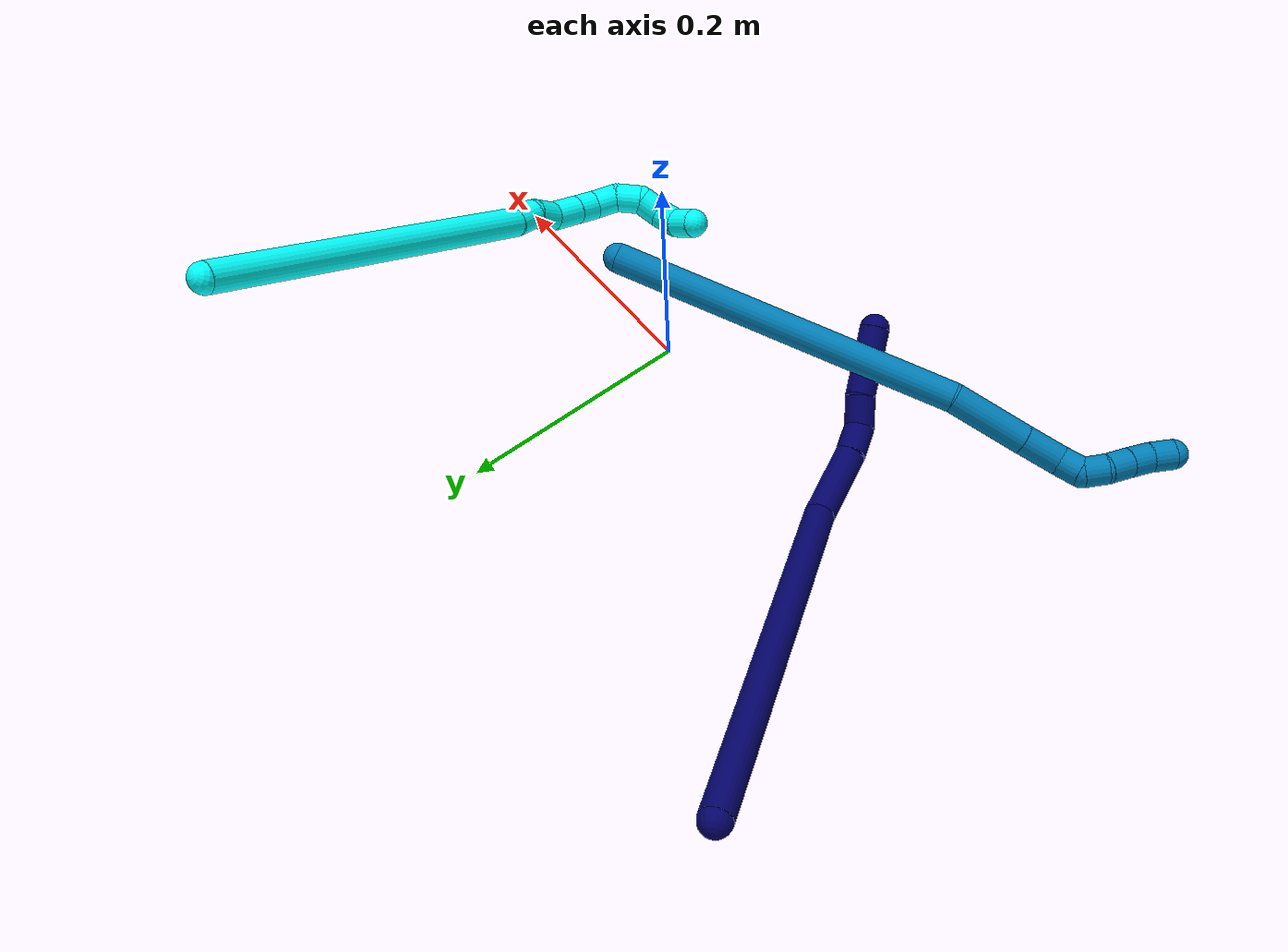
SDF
<sdf version="1.7">
 <world name="default">
  <model name="bin">
   <static>1</static>
   <link name="bottom">
    <collision name="collision-bottom">
     <pose>0 0 -0.01 0 -0 0</pose>
     <geometry><box><size>0.8 0.6 0.02</size></box></geometry>
     <surface>
      <friction><ode><mu>100</mu><mu2>100</mu2></ode></friction>
      <contact><collide_bitmask>65535</collide_bitmask></contact>
     </surface>
    </collision>
   </link>
   <link name="west_wall">
    <collision name="collision-west_wall">
     <pose>-0.41 0 0.1 0 -0 0</pose>
     <geometry><box><size>0.02 0.6 0.2</size></box></geometry>
     <surface>
      <friction><ode><mu>100</mu><mu2>100</mu2></ode></friction>
      <contact><collide_bitmask>65535</collide_bitmask></contact>
     </surface>
    </collision>
   </link>
   <link name="east_wall">
    <collision name="collision-east_wall">
     <pose>0.41 0 0.1 0 -0 0</pose>
     <geometry><box><size>0.02 0.6 0.2</size></box></geometry>
     <surface>
      <friction><ode><mu>100</mu><mu2>100</mu2></ode></friction>
      <contact><collide_bitmask>65535</collide_bitmask></contact>
     </surface>
    </collision>
   </link>
   <link name="south_wall">
    <collision name="collision-south_wall">
     <pose>0 -0.31 0.1 0 -0 0</pose>
     <geometry><box><size>0.8 0.02 0.2</size></box></geometry>
     <surface>
      <friction><ode><mu>100</mu><mu2>100</mu2></ode></friction>
      <contact><collide_bitmask>65535</collide_bitmask></contact>
     </surface>
    </collision>
   </link>
   <link name="north_wall">
    <collision name="collision-north_wall">
     <pose>0 0.31 0.1 0 -0 0</pose>
     <geometry><box><size>0.8 0.02 0.2</size></box></geometry>
     <surface>
      <friction><ode><mu>100</mu><mu2>100</mu2></ode></friction>
      <contact><collide_bitmask>65535</collide_bitmask></contact>
     </surface>
    </collision>
   </link>
  </model>
  <model name="3">
   <static>0</static>
   <link name="3">
    <collision name="collision-cylinder-e_1_1_4">
     <pose>0.031342 -0.039373 -0.140825 2.86897 0.211148 1.31557</pose>
     <geometry><cylinder><radius>0.0125</radius><length>0.299094</length></cylinder></geometry>
     <surface>
      <friction><ode><mu>1.16</mu><mu2>1.16</mu2><slip1>0</slip1><slip2>0</slip2></ode></friction>
      <contact><ode><kp>1e+06</kp><kd>1</kd><max_vel>0</max_vel><min_depth>0.001</min_depth></ode></contact>
     </surface>
    </collision>
    <visual name="visual-cylinder-e_1_1_4">
     <pose>0.031342 -0.039373 -0.140825 2.86897 0.211148 1.31557</pose>
     <geometry><cylinder><radius>0.0125</radius><length>0.299094</length></cylinder></geometry>
     <material><ambient>0.003922 1 0.996078 1</ambient></material>
    </visual>
    <collision name="collision-cylinder-e_2_4_5">
     <pose>0.066972 -0.082646 -0.29184 2.77611 0.374441 1.59556</pose>
     <geometry><cylinder><radius>0.0125</radius><length>0.023444</length></cylinder></geometry>
     <surface>
      <friction><ode><mu>1.16</mu><mu2>1.16</mu2><slip1>0</slip1><slip2>0</slip2></ode></friction>
      <contact><ode><kp>1e+06</kp><kd>1</kd><max_vel>0</max_vel><min_depth>0.001</min_depth></ode></contact>
     </surface>
    </collision>
    <visual name="visual-cylinder-e_2_4_5">
     <pose>0.066972 -0.082646 -0.29184 2.77611 0.374441 1.59556</pose>
     <geometry><cylinder><radius>0.0125</radius><length>0.023444</length></cylinder></geometry>
     <material><ambient>0.003922 1 0.996078 1</ambient></material>
    </visual>
    <collision name="collision-cylinder-e_3_5_6">
     <pose>0.072907 -0.086809 -0.314679 3.12072 0.129448 2.82234</pose>
     <geometry><cylinder><radius>0.0125</radius><length>0.025519</length></cylinder></geometry>
     <surface>
      <friction><ode><mu>1.16</mu><mu2>1.16</mu2><slip1>0</slip1><slip2>0</slip2></ode></friction>
      <contact><ode><kp>1e+06</kp><kd>1</kd><max_vel>0</max_vel><min_depth>0.001</min_depth></ode></contact>
     </surface>
    </collision>
    <visual name="visual-cylinder-e_3_5_6">
     <pose>0.072907 -0.086809 -0.314679 3.12072 0.129448 2.82234</pose>
     <geometry><cylinder><radius>0.0125</radius><length>0.025519</length></cylinder></geometry>
     <material><ambient>0.003922 1 0.996078 1</ambient></material>
    </visual>
    <collision name="collision-cylinder-e_4_6_7">
     <pose>0.076964 -0.092614 -0.339115 2.70213 0.182992 0.779597</pose>
     <geometry><cylinder><radius>0.0125</radius><length>0.026489</length></cylinder></geometry>
     <surface>
      <friction><ode><mu>1.16</mu><mu2>1.16</mu2><slip1>0</slip1><slip2>0</slip2></ode></friction>
      <contact><ode><kp>1e+06</kp><kd>1</kd><max_vel>0</max_vel><min_depth>0.001</min_depth></ode></contact>
     </surface>
    </collision>
    <visual name="visual-cylinder-e_4_6_7">
     <pose>0.076964 -0.092614 -0.339115 2.70213 0.182992 0.779597</pose>
     <geometry><cylinder><radius>0.0125</radius><length>0.026489</length></cylinder></geometry>
     <material><ambient>0.003922 1 0.996078 1</ambient></material>
    </visual>
    <collision name="collision-cylinder-e_5_7_8">
     <pose>0.08133 -0.102539 -0.360239 2.7026 0.187367 0.79724</pose>
     <geometry><cylinder><radius>0.0125</radius><length>0.021</length></cylinder></geometry>
     <surface>
      <friction><ode><mu>1.16</mu><mu2>1.16</mu2><slip1>0</slip1><slip2>0</slip2></ode></friction>
      <contact><ode><kp>1e+06</kp><kd>1</kd><max_vel>0</max_vel><min_depth>0.001</min_depth></ode></contact>
     </surface>
    </collision>
    <visual name="visual-cylinder-e_5_7_8">
     <pose>0.08133 -0.102539 -0.360239 2.7026 0.187367 0.79724</pose>
     <geometry><cylinder><radius>0.0125</radius><length>0.021</length></cylinder></geometry>
     <material><ambient>0.003922 1 0.996078 1</ambient></material>
    </visual>
    <collision name="collision-cylinder-e_6_8_9">
     <pose>0.082173 -0.115529 -0.375821 2.19853 -0.104334 -0.204092</pose>
     <geometry><cylinder><radius>0.0125</radius><length>0.021379</length></cylinder></geometry>
     <surface>
      <friction><ode><mu>1.16</mu><mu2>1.16</mu2><slip1>0</slip1><slip2>0</slip2></ode></friction>
      <contact><ode><kp>1e+06</kp><kd>1</kd><max_vel>0</max_vel><min_depth>0.001</min_depth></ode></contact>
     </surface>
    </collision>
    <visual name="visual-cylinder-e_6_8_9">
     <pose>0.082173 -0.115529 -0.375821 2.19853 -0.104334 -0.204092</pose>
     <geometry><cylinder><radius>0.0125</radius><length>0.021379</length></cylinder></geometry>
     <material><ambient>0.003922 1 0.996078 1</ambient></material>
    </visual>
    <collision name="collision-cylinder-e_7_9_10">
     <pose>0.075359 -0.131398 -0.388075 2.26194 -0.543823 -1.06979</pose>
     <geometry><cylinder><radius>0.0125</radius><length>0.022036</length></cylinder></geometry>
     <surface>
      <friction><ode><mu>1.16</mu><mu2>1.16</mu2><slip1>0</slip1><slip2>0</slip2></ode></friction>
      <contact><ode><kp>1e+06</kp><kd>1</kd><max_vel>0</max_vel><min_depth>0.001</min_depth></ode></contact>
     </surface>
    </collision>
    <visual name="visual-cylinder-e_7_9_10">
     <pose>0.075359 -0.131398 -0.388075 2.26194 -0.543823 -1.06979</pose>
     <geometry><cylinder><radius>0.0125</radius><length>0.022036</length></cylinder></geometry>
     <material><ambient>0.003922 1 0.996078 1</ambient></material>
    </visual>
    <collision name="collision-cylinder-e_8_10_11">
     <pose>0.061802 -0.140509 -0.400567 2.86419 -0.861648 -2.55186</pose>
     <geometry><cylinder><radius>0.0125</radius><length>0.020703</length></cylinder></geometry>
     <surface>
      <friction><ode><mu>1.16</mu><mu2>1.16</mu2><slip1>0</slip1><slip2>0</slip2></ode></friction>
      <contact><ode><kp>1e+06</kp><kd>1</kd><max_vel>0</max_vel><min_depth>0.001</min_depth></ode></contact>
     </surface>
    </collision>
    <visual name="visual-cylinder-e_8_10_11">
     <pose>0.061802 -0.140509 -0.400567 2.86419 -0.861648 -2.55186</pose>
     <geometry><cylinder><radius>0.0125</radius><length>0.020703</length></cylinder></geometry>
     <material><ambient>0.003922 1 0.996078 1</ambient></material>
    </visual>
    <collision name="collision-cylinder-e_9_11_12">
     <pose>0.044919 -0.146901 -0.4077 1.71258 -1.10023 -1.23084</pose>
     <geometry><cylinder><radius>0.0125</radius><length>0.020256</length></cylinder></geometry>
     <surface>
      <friction><ode><mu>1.16</mu><mu2>1.16</mu2><slip1>0</slip1><slip2>0</slip2></ode></friction>
      <contact><ode><kp>1e+06</kp><kd>1</kd><max_vel>0</max_vel><min_depth>0.001</min_depth></ode></contact>
     </surface>
    </collision>
    <visual name="visual-cylinder-e_9_11_12">
     <pose>0.044919 -0.146901 -0.4077 1.71258 -1.10023 -1.23084</pose>
     <geometry><cylinder><radius>0.0125</radius><length>0.020256</length></cylinder></geometry>
     <material><ambient>0.003922 1 0.996078 1</ambient></material>
    </visual>
    <collision name="collision-cylinder-e_10_12_2">
     <pose>0.029352 -0.159052 -0.40792 1.5145 -0.709384 -0.673476</pose>
     <geometry><cylinder><radius>0.0125</radius><length>0.020079</length></cylinder></geometry>
     <surface>
      <friction><ode><mu>1.16</mu><mu2>1.16</mu2><slip1>0</slip1><slip2>0</slip2></ode></friction>
      <contact><ode><kp>1e+06</kp><kd>1</kd><max_vel>0</max_vel><min_depth>0.001</min_depth></ode></contact>
     </surface>
    </collision>
    <visual name="visual-cylinder-e_10_12_2">
     <pose>0.029352 -0.159052 -0.40792 1.5145 -0.709384 -0.673476</pose>
     <geometry><cylinder><radius>0.0125</radius><length>0.020079</length></cylinder></geometry>
     <material><ambient>0.003922 1 0.996078 1</ambient></material>
    </visual>
    <collision name="collision-sphere-2">
     <pose>0.022812 -0.166658 -0.407491 0 -0 0</pose>
     <geometry><sphere><radius>0.0125</radius></sphere></geometry>
     <surface>
      <friction><ode><mu>1.16</mu><mu2>1.16</mu2><slip1>0</slip1><slip2>0</slip2></ode></friction>
      <contact><ode><kp>1e+06</kp><kd>1</kd><max_vel>0</max_vel><min_depth>0.001</min_depth></ode></contact>
     </surface>
    </collision>
    <visual name="visual-sphere-2">
     <pose>0.022812 -0.166658 -0.407491 0 -0 0</pose>
     <geometry><sphere><radius>0.0125</radius></sphere></geometry>
     <material><ambient>0.003922 1 0.996078 1</ambient></material>
    </visual>
    <collision name="collision-sphere-12">
     <pose>0.035891 -0.151447 -0.408348 0 -0 0</pose>
     <geometry><sphere><radius>0.0125</radius></sphere></geometry>
     <surface>
      <friction><ode><mu>1.16</mu><mu2>1.16</mu2><slip1>0</slip1><slip2>0</slip2></ode></friction>
      <contact><ode><kp>1e+06</kp><kd>1</kd><max_vel>0</max_vel><min_depth>0.001</min_depth></ode></contact>
     </surface>
    </collision>
    <visual name="visual-sphere-12">
     <pose>0.035891 -0.151447 -0.408348 0 -0 0</pose>
     <geometry><sphere><radius>0.0125</radius></sphere></geometry>
     <material><ambient>0.003922 1 0.996078 1</ambient></material>
    </visual>
    <collision name="collision-sphere-11">
     <pose>0.053946 -0.142355 -0.407051 0 -0 0</pose>
     <geometry><sphere><radius>0.0125</radius></sphere></geometry>
     <surface>
      <friction><ode><mu>1.16</mu><mu2>1.16</mu2><slip1>0</slip1><slip2>0</slip2></ode></friction>
      <contact><ode><kp>1e+06</kp><kd>1</kd><max_vel>0</max_vel><min_depth>0.001</min_depth></ode></contact>
     </surface>
    </collision>
    <visual name="visual-sphere-11">
     <pose>0.053946 -0.142355 -0.407051 0 -0 0</pose>
     <geometry><sphere><radius>0.0125</radius></sphere></geometry>
     <material><ambient>0.003922 1 0.996078 1</ambient></material>
    </visual>
    <collision name="collision-sphere-10">
     <pose>0.069658 -0.138663 -0.394084 0 -0 0</pose>
     <geometry><sphere><radius>0.0125</radius></sphere></geometry>
     <surface>
      <friction><ode><mu>1.16</mu><mu2>1.16</mu2><slip1>0</slip1><slip2>0</slip2></ode></friction>
      <contact><ode><kp>1e+06</kp><kd>1</kd><max_vel>0</max_vel><min_depth>0.001</min_depth></ode></contact>
     </surface>
    </collision>
    <visual name="visual-sphere-10">
     <pose>0.069658 -0.138663 -0.394084 0 -0 0</pose>
     <geometry><sphere><radius>0.0125</radius></sphere></geometry>
     <material><ambient>0.003922 1 0.996078 1</ambient></material>
    </visual>
    <collision name="collision-sphere-9">
     <pose>0.081059 -0.124133 -0.382065 0 -0 0</pose>
     <geometry><sphere><radius>0.0125</radius></sphere></geometry>
     <surface>
      <friction><ode><mu>1.16</mu><mu2>1.16</mu2><slip1>0</slip1><slip2>0</slip2></ode></friction>
      <contact><ode><kp>1e+06</kp><kd>1</kd><max_vel>0</max_vel><min_depth>0.001</min_depth></ode></contact>
     </surface>
    </collision>
    <visual name="visual-sphere-9">
     <pose>0.081059 -0.124133 -0.382065 0 -0 0</pose>
     <geometry><sphere><radius>0.0125</radius></sphere></geometry>
     <material><ambient>0.003922 1 0.996078 1</ambient></material>
    </visual>
    <collision name="collision-sphere-4">
     <pose>0.062685 -0.078746 -0.28165 0 -0 0</pose>
     <geometry><sphere><radius>0.0125</radius></sphere></geometry>
     <surface>
      <friction><ode><mu>1.16</mu><mu2>1.16</mu2><slip1>0</slip1><slip2>0</slip2></ode></friction>
      <contact><ode><kp>1e+06</kp><kd>1</kd><max_vel>0</max_vel><min_depth>0.001</min_depth></ode></contact>
     </surface>
    </collision>
    <visual name="visual-sphere-4">
     <pose>0.062685 -0.078746 -0.28165 0 -0 0</pose>
     <geometry><sphere><radius>0.0125</radius></sphere></geometry>
     <material><ambient>0.003922 1 0.996078 1</ambient></material>
    </visual>
    <collision name="collision-sphere-1">
     <geometry><sphere><radius>0.0125</radius></sphere></geometry>
     <surface>
      <friction><ode><mu>1.16</mu><mu2>1.16</mu2><slip1>0</slip1><slip2>0</slip2></ode></friction>
      <contact><ode><kp>1e+06</kp><kd>1</kd><max_vel>0</max_vel><min_depth>0.001</min_depth></ode></contact>
     </surface>
    </collision>
    <visual name="visual-sphere-1">
     <geometry><sphere><radius>0.0125</radius></sphere></geometry>
     <material><ambient>0.003922 1 0.996078 1</ambient></material>
    </visual>
    <collision name="collision-sphere-8">
     <pose>0.083286 -0.106924 -0.369577 0 -0 0</pose>
     <geometry><sphere><radius>0.0125</radius></sphere></geometry>
     <surface>
      <friction><ode><mu>1.16</mu><mu2>1.16</mu2><slip1>0</slip1><slip2>0</slip2></ode></friction>
      <contact><ode><kp>1e+06</kp><kd>1</kd><max_vel>0</max_vel><min_depth>0.001</min_depth></ode></contact>
     </surface>
    </collision>
    <visual name="visual-sphere-8">
     <pose>0.083286 -0.106924 -0.369577 0 -0 0</pose>
     <geometry><sphere><radius>0.0125</radius></sphere></geometry>
     <material><ambient>0.003922 1 0.996078 1</ambient></material>
    </visual>
    <collision name="collision-sphere-5">
     <pose>0.07126 -0.086545 -0.302029 0 -0 0</pose>
     <geometry><sphere><radius>0.0125</radius></sphere></geometry>
     <surface>
      <friction><ode><mu>1.16</mu><mu2>1.16</mu2><slip1>0</slip1><slip2>0</slip2></ode></friction>
      <contact><ode><kp>1e+06</kp><kd>1</kd><max_vel>0</max_vel><min_depth>0.001</min_depth></ode></contact>
     </surface>
    </collision>
    <visual name="visual-sphere-5">
     <pose>0.07126 -0.086545 -0.302029 0 -0 0</pose>
     <geometry><sphere><radius>0.0125</radius></sphere></geometry>
     <material><ambient>0.003922 1 0.996078 1</ambient></material>
    </visual>
    <collision name="collision-sphere-6">
     <pose>0.074554 -0.087073 -0.327329 0 -0 0</pose>
     <geometry><sphere><radius>0.0125</radius></sphere></geometry>
     <surface>
      <friction><ode><mu>1.16</mu><mu2>1.16</mu2><slip1>0</slip1><slip2>0</slip2></ode></friction>
      <contact><ode><kp>1e+06</kp><kd>1</kd><max_vel>0</max_vel><min_depth>0.001</min_depth></ode></contact>
     </surface>
    </collision>
    <visual name="visual-sphere-6">
     <pose>0.074554 -0.087073 -0.327329 0 -0 0</pose>
     <geometry><sphere><radius>0.0125</radius></sphere></geometry>
     <material><ambient>0.003922 1 0.996078 1</ambient></material>
    </visual>
    <collision name="collision-sphere-7">
     <pose>0.079374 -0.098155 -0.350901 0 -0 0</pose>
     <geometry><sphere><radius>0.0125</radius></sphere></geometry>
     <surface>
      <friction><ode><mu>1.16</mu><mu2>1.16</mu2><slip1>0</slip1><slip2>0</slip2></ode></friction>
      <contact><ode><kp>1e+06</kp><kd>1</kd><max_vel>0</max_vel><min_depth>0.001</min_depth></ode></contact>
     </surface>
    </collision>
    <visual name="visual-sphere-7">
     <pose>0.079374 -0.098155 -0.350901 0 -0 0</pose>
     <geometry><sphere><radius>0.0125</radius></sphere></geometry>
     <material><ambient>0.003922 1 0.996078 1</ambient></material>
    </visual>
    <inertial>
     <pose>0.045495 -0.069959 -0.229737 0 -0 0</pose>
     <mass>0.5</mass>
     <inertia>
      <ixx>0.002681</ixx>
      <ixy>0</ixy>
      <ixz>0</ixz>
      <iyy>0.001689</iyy>
      <iyz>0</iyz>
      <izz>9.8e-05</izz>
     </inertia>
    </inertial>
   </link>
   <pose>0.122307 0.313865 0.220635 -0.751245 -0.130834 -0.238798</pose>
  </model>
  <model name="7">
   <static>0</static>
   <link name="7">
    <collision name="collision-cylinder-e_1_1_4">
     <pose>-0.02844 0.000386 -0.160503 -3.13919 -0.175371 3.11425</pose>
     <geometry><cylinder><radius>0.0125</radius><length>0.326007</length></cylinder></geometry>
     <surface>
      <friction><ode><mu>1.16</mu><mu2>1.16</mu2><slip1>0</slip1><slip2>0</slip2></ode></friction>
      <contact><ode><kp>1e+06</kp><kd>1</kd><max_vel>0</max_vel><min_depth>0.001</min_depth></ode></contact>
     </surface>
    </collision>
    <visual name="visual-cylinder-e_1_1_4">
     <pose>-0.02844 0.000386 -0.160503 -3.13919 -0.175371 3.11425</pose>
     <geometry><cylinder><radius>0.0125</radius><length>0.326007</length></cylinder></geometry>
     <material><ambient>0.003922 0 0.403922 1</ambient></material>
    </visual>
    <collision name="collision-cylinder-e_2_4_5">
     <pose>-0.054409 -0.010188 -0.34971 2.77684 0.08025 0.428681</pose>
     <geometry><cylinder><radius>0.0125</radius><length>0.061648</length></cylinder></geometry>
     <surface>
      <friction><ode><mu>1.16</mu><mu2>1.16</mu2><slip1>0</slip1><slip2>0</slip2></ode></friction>
      <contact><ode><kp>1e+06</kp><kd>1</kd><max_vel>0</max_vel><min_depth>0.001</min_depth></ode></contact>
     </surface>
    </collision>
    <visual name="visual-cylinder-e_2_4_5">
     <pose>-0.054409 -0.010188 -0.34971 2.77684 0.08025 0.428681</pose>
     <geometry><cylinder><radius>0.0125</radius><length>0.061648</length></cylinder></geometry>
     <material><ambient>0.003922 0 0.403922 1</ambient></material>
    </visual>
    <collision name="collision-cylinder-e_3_5_6">
     <pose>-0.050256 -0.024451 -0.391997 2.90314 0.119717 0.927737</pose>
     <geometry><cylinder><radius>0.0125</radius><length>0.02816</length></cylinder></geometry>
     <surface>
      <friction><ode><mu>1.16</mu><mu2>1.16</mu2><slip1>0</slip1><slip2>0</slip2></ode></friction>
      <contact><ode><kp>1e+06</kp><kd>1</kd><max_vel>0</max_vel><min_depth>0.001</min_depth></ode></contact>
     </surface>
    </collision>
    <visual name="visual-cylinder-e_3_5_6">
     <pose>-0.050256 -0.024451 -0.391997 2.90314 0.119717 0.927737</pose>
     <geometry><cylinder><radius>0.0125</radius><length>0.02816</length></cylinder></geometry>
     <material><ambient>0.003922 0 0.403922 1</ambient></material>
    </visual>
    <collision name="collision-cylinder-e_4_6_7">
     <pose>-0.039865 -0.031051 -0.415023 2.80546 0.716419 2.29055</pose>
     <geometry><cylinder><radius>0.0125</radius><length>0.026524</length></cylinder></geometry>
     <surface>
      <friction><ode><mu>1.16</mu><mu2>1.16</mu2><slip1>0</slip1><slip2>0</slip2></ode></friction>
      <contact><ode><kp>1e+06</kp><kd>1</kd><max_vel>0</max_vel><min_depth>0.001</min_depth></ode></contact>
     </surface>
    </collision>
    <visual name="visual-cylinder-e_4_6_7">
     <pose>-0.039865 -0.031051 -0.415023 2.80546 0.716419 2.29055</pose>
     <geometry><cylinder><radius>0.0125</radius><length>0.026524</length></cylinder></geometry>
     <material><ambient>0.003922 0 0.403922 1</ambient></material>
    </visual>
    <collision name="collision-cylinder-e_5_7_2">
     <pose>-0.016909 -0.044526 -0.44737 2.72353 0.516892 1.78914</pose>
     <geometry><cylinder><radius>0.0125</radius><length>0.05766</length></cylinder></geometry>
     <surface>
      <friction><ode><mu>1.16</mu><mu2>1.16</mu2><slip1>0</slip1><slip2>0</slip2></ode></friction>
      <contact><ode><kp>1e+06</kp><kd>1</kd><max_vel>0</max_vel><min_depth>0.001</min_depth></ode></contact>
     </surface>
    </collision>
    <visual name="visual-cylinder-e_5_7_2">
     <pose>-0.016909 -0.044526 -0.44737 2.72353 0.516892 1.78914</pose>
     <geometry><cylinder><radius>0.0125</radius><length>0.05766</length></cylinder></geometry>
     <material><ambient>0.003922 0 0.403922 1</ambient></material>
    </visual>
    <collision name="collision-sphere-2">
     <pose>-0.002662 -0.054702 -0.470275 0 -0 0</pose>
     <geometry><sphere><radius>0.0125</radius></sphere></geometry>
     <surface>
      <friction><ode><mu>1.16</mu><mu2>1.16</mu2><slip1>0</slip1><slip2>0</slip2></ode></friction>
      <contact><ode><kp>1e+06</kp><kd>1</kd><max_vel>0</max_vel><min_depth>0.001</min_depth></ode></contact>
     </surface>
    </collision>
    <visual name="visual-sphere-2">
     <pose>-0.002662 -0.054702 -0.470275 0 -0 0</pose>
     <geometry><sphere><radius>0.0125</radius></sphere></geometry>
     <material><ambient>0.003922 0 0.403922 1</ambient></material>
    </visual>
    <collision name="collision-sphere-7">
     <pose>-0.031157 -0.03435 -0.424465 0 -0 0</pose>
     <geometry><sphere><radius>0.0125</radius></sphere></geometry>
     <surface>
      <friction><ode><mu>1.16</mu><mu2>1.16</mu2><slip1>0</slip1><slip2>0</slip2></ode></friction>
      <contact><ode><kp>1e+06</kp><kd>1</kd><max_vel>0</max_vel><min_depth>0.001</min_depth></ode></contact>
     </surface>
    </collision>
    <visual name="visual-sphere-7">
     <pose>-0.031157 -0.03435 -0.424465 0 -0 0</pose>
     <geometry><sphere><radius>0.0125</radius></sphere></geometry>
     <material><ambient>0.003922 0 0.403922 1</ambient></material>
    </visual>
    <collision name="collision-sphere-6">
     <pose>-0.048574 -0.027752 -0.405581 0 -0 0</pose>
     <geometry><sphere><radius>0.0125</radius></sphere></geometry>
     <surface>
      <friction><ode><mu>1.16</mu><mu2>1.16</mu2><slip1>0</slip1><slip2>0</slip2></ode></friction>
      <contact><ode><kp>1e+06</kp><kd>1</kd><max_vel>0</max_vel><min_depth>0.001</min_depth></ode></contact>
     </surface>
    </collision>
    <visual name="visual-sphere-6">
     <pose>-0.048574 -0.027752 -0.405581 0 -0 0</pose>
     <geometry><sphere><radius>0.0125</radius></sphere></geometry>
     <material><ambient>0.003922 0 0.403922 1</ambient></material>
    </visual>
    <collision name="collision-sphere-5">
     <pose>-0.051938 -0.021149 -0.378414 0 -0 0</pose>
     <geometry><sphere><radius>0.0125</radius></sphere></geometry>
     <surface>
      <friction><ode><mu>1.16</mu><mu2>1.16</mu2><slip1>0</slip1><slip2>0</slip2></ode></friction>
      <contact><ode><kp>1e+06</kp><kd>1</kd><max_vel>0</max_vel><min_depth>0.001</min_depth></ode></contact>
     </surface>
    </collision>
    <visual name="visual-sphere-5">
     <pose>-0.051938 -0.021149 -0.378414 0 -0 0</pose>
     <geometry><sphere><radius>0.0125</radius></sphere></geometry>
     <material><ambient>0.003922 0 0.403922 1</ambient></material>
    </visual>
    <collision name="collision-sphere-1">
     <geometry><sphere><radius>0.0125</radius></sphere></geometry>
     <surface>
      <friction><ode><mu>1.16</mu><mu2>1.16</mu2><slip1>0</slip1><slip2>0</slip2></ode></friction>
      <contact><ode><kp>1e+06</kp><kd>1</kd><max_vel>0</max_vel><min_depth>0.001</min_depth></ode></contact>
     </surface>
    </collision>
    <visual name="visual-sphere-1">
     <geometry><sphere><radius>0.0125</radius></sphere></geometry>
     <material><ambient>0.003922 0 0.403922 1</ambient></material>
    </visual>
    <collision name="collision-sphere-4">
     <pose>-0.05688 0.000772 -0.321006 0 -0 0</pose>
     <geometry><sphere><radius>0.0125</radius></sphere></geometry>
     <surface>
      <friction><ode><mu>1.16</mu><mu2>1.16</mu2><slip1>0</slip1><slip2>0</slip2></ode></friction>
      <contact><ode><kp>1e+06</kp><kd>1</kd><max_vel>0</max_vel><min_depth>0.001</min_depth></ode></contact>
     </surface>
    </collision>
    <visual name="visual-sphere-4">
     <pose>-0.05688 0.000772 -0.321006 0 -0 0</pose>
     <geometry><sphere><radius>0.0125</radius></sphere></geometry>
     <material><ambient>0.003922 0 0.403922 1</ambient></material>
    </visual>
    <inertial>
     <pose>-0.032147 -0.009164 -0.243453 0 -0 0</pose>
     <mass>0.5</mass>
     <inertia>
      <ixx>-0.002731</ixx>
      <ixy>0</ixy>
      <ixz>0</ixz>
      <iyy>0.00299</iyy>
      <iyz>0</iyz>
      <izz>0.000465</izz>
     </inertia>
    </inertial>
   </link>
   <pose>-0.388489 0.260116 0.128354 -1.16791 -1.0005 0.366794</pose>
  </model>
  <model name="9">
   <static>0</static>
   <link name="9">
    <collision name="collision-cylinder-e_1_1_4">
     <pose>-0.066811 -0.050888 0.122477 0.393786 -0.466643 -0.094741</pose>
     <geometry><cylinder><radius>0.0125</radius><length>0.297011</length></cylinder></geometry>
     <surface>
      <friction><ode><mu>1.16</mu><mu2>1.16</mu2><slip1>0</slip1><slip2>0</slip2></ode></friction>
      <contact><ode><kp>1e+06</kp><kd>1</kd><max_vel>0</max_vel><min_depth>0.001</min_depth></ode></contact>
     </surface>
    </collision>
    <visual name="visual-cylinder-e_1_1_4">
     <pose>-0.066811 -0.050888 0.122477 0.393786 -0.466643 -0.094741</pose>
     <geometry><cylinder><radius>0.0125</radius><length>0.297011</length></cylinder></geometry>
     <material><ambient>0 0.490196 0.709804 1</ambient></material>
    </visual>
    <collision name="collision-cylinder-e_2_4_5">
     <pose>-0.148587 -0.106434 0.274191 0.158009 -0.467997 -0.037738</pose>
     <geometry><cylinder><radius>0.0125</radius><length>0.066348</length></cylinder></geometry>
     <surface>
      <friction><ode><mu>1.16</mu><mu2>1.16</mu2><slip1>0</slip1><slip2>0</slip2></ode></friction>
      <contact><ode><kp>1e+06</kp><kd>1</kd><max_vel>0</max_vel><min_depth>0.001</min_depth></ode></contact>
     </surface>
    </collision>
    <visual name="visual-cylinder-e_2_4_5">
     <pose>-0.148587 -0.106434 0.274191 0.158009 -0.467997 -0.037738</pose>
     <geometry><cylinder><radius>0.0125</radius><length>0.066348</length></cylinder></geometry>
     <material><ambient>0 0.490196 0.709804 1</ambient></material>
    </visual>
    <collision name="collision-cylinder-e_3_5_6">
     <pose>-0.171927 -0.113305 0.318741 0.143494 -0.496189 -0.036408</pose>
     <geometry><cylinder><radius>0.0125</radius><length>0.035185</length></cylinder></geometry>
     <surface>
      <friction><ode><mu>1.16</mu><mu2>1.16</mu2><slip1>0</slip1><slip2>0</slip2></ode></friction>
      <contact><ode><kp>1e+06</kp><kd>1</kd><max_vel>0</max_vel><min_depth>0.001</min_depth></ode></contact>
     </surface>
    </collision>
    <visual name="visual-cylinder-e_3_5_6">
     <pose>-0.171927 -0.113305 0.318741 0.143494 -0.496189 -0.036408</pose>
     <geometry><cylinder><radius>0.0125</radius><length>0.035185</length></cylinder></geometry>
     <material><ambient>0 0.490196 0.709804 1</ambient></material>
    </visual>
    <collision name="collision-cylinder-e_4_6_7">
     <pose>-0.18221 -0.120601 0.342766 0.528218 -0.186875 -0.050673</pose>
     <geometry><cylinder><radius>0.0125</radius><length>0.020531</length></cylinder></geometry>
     <surface>
      <friction><ode><mu>1.16</mu><mu2>1.16</mu2><slip1>0</slip1><slip2>0</slip2></ode></friction>
      <contact><ode><kp>1e+06</kp><kd>1</kd><max_vel>0</max_vel><min_depth>0.001</min_depth></ode></contact>
     </surface>
    </collision>
    <visual name="visual-cylinder-e_4_6_7">
     <pose>-0.18221 -0.120601 0.342766 0.528218 -0.186875 -0.050673</pose>
     <geometry><cylinder><radius>0.0125</radius><length>0.020531</length></cylinder></geometry>
     <material><ambient>0 0.490196 0.709804 1</ambient></material>
    </visual>
    <collision name="collision-cylinder-e_5_7_8">
     <pose>-0.192113 -0.130289 0.355551 0.846491 -0.915336 -0.436683</pose>
     <geometry><cylinder><radius>0.0125</radius><length>0.020172</length></cylinder></geometry>
     <surface>
      <friction><ode><mu>1.16</mu><mu2>1.16</mu2><slip1>0</slip1><slip2>0</slip2></ode></friction>
      <contact><ode><kp>1e+06</kp><kd>1</kd><max_vel>0</max_vel><min_depth>0.001</min_depth></ode></contact>
     </surface>
    </collision>
    <visual name="visual-cylinder-e_5_7_8">
     <pose>-0.192113 -0.130289 0.355551 0.846491 -0.915336 -0.436683</pose>
     <geometry><cylinder><radius>0.0125</radius><length>0.020172</length></cylinder></geometry>
     <material><ambient>0 0.490196 0.709804 1</ambient></material>
    </visual>
    <collision name="collision-cylinder-e_6_8_9">
     <pose>-0.209652 -0.137061 0.36237 0.668367 -1.21949 -0.475888</pose>
     <geometry><cylinder><radius>0.0125</radius><length>0.020328</length></cylinder></geometry>
     <surface>
      <friction><ode><mu>1.16</mu><mu2>1.16</mu2><slip1>0</slip1><slip2>0</slip2></ode></friction>
      <contact><ode><kp>1e+06</kp><kd>1</kd><max_vel>0</max_vel><min_depth>0.001</min_depth></ode></contact>
     </surface>
    </collision>
    <visual name="visual-cylinder-e_6_8_9">
     <pose>-0.209652 -0.137061 0.36237 0.668367 -1.21949 -0.475888</pose>
     <geometry><cylinder><radius>0.0125</radius><length>0.020328</length></cylinder></geometry>
     <material><ambient>0 0.490196 0.709804 1</ambient></material>
    </visual>
    <collision name="collision-cylinder-e_7_9_10">
     <pose>-0.228626 -0.141439 0.368123 0.633601 -1.19385 -0.438464</pose>
     <geometry><cylinder><radius>0.0125</radius><length>0.020287</length></cylinder></geometry>
     <surface>
      <friction><ode><mu>1.16</mu><mu2>1.16</mu2><slip1>0</slip1><slip2>0</slip2></ode></friction>
      <contact><ode><kp>1e+06</kp><kd>1</kd><max_vel>0</max_vel><min_depth>0.001</min_depth></ode></contact>
     </surface>
    </collision>
    <visual name="visual-cylinder-e_7_9_10">
     <pose>-0.228626 -0.141439 0.368123 0.633601 -1.19385 -0.438464</pose>
     <geometry><cylinder><radius>0.0125</radius><length>0.020287</length></cylinder></geometry>
     <material><ambient>0 0.490196 0.709804 1</ambient></material>
    </visual>
    <collision name="collision-cylinder-e_8_10_2">
     <pose>-0.246394 -0.147453 0.375306 0.739022 -0.975482 -0.405278</pose>
     <geometry><cylinder><radius>0.0125</radius><length>0.020139</length></cylinder></geometry>
     <surface>
      <friction><ode><mu>1.16</mu><mu2>1.16</mu2><slip1>0</slip1><slip2>0</slip2></ode></friction>
      <contact><ode><kp>1e+06</kp><kd>1</kd><max_vel>0</max_vel><min_depth>0.001</min_depth></ode></contact>
     </surface>
    </collision>
    <visual name="visual-cylinder-e_8_10_2">
     <pose>-0.246394 -0.147453 0.375306 0.739022 -0.975482 -0.405278</pose>
     <geometry><cylinder><radius>0.0125</radius><length>0.020139</length></cylinder></geometry>
     <material><ambient>0 0.490196 0.709804 1</ambient></material>
    </visual>
    <collision name="collision-sphere-2">
     <pose>-0.254732 -0.151256 0.37948 0 -0 0</pose>
     <geometry><sphere><radius>0.0125</radius></sphere></geometry>
     <surface>
      <friction><ode><mu>1.16</mu><mu2>1.16</mu2><slip1>0</slip1><slip2>0</slip2></ode></friction>
      <contact><ode><kp>1e+06</kp><kd>1</kd><max_vel>0</max_vel><min_depth>0.001</min_depth></ode></contact>
     </surface>
    </collision>
    <visual name="visual-sphere-2">
     <pose>-0.254732 -0.151256 0.37948 0 -0 0</pose>
     <geometry><sphere><radius>0.0125</radius></sphere></geometry>
     <material><ambient>0 0.490196 0.709804 1</ambient></material>
    </visual>
    <collision name="collision-sphere-10">
     <pose>-0.238057 -0.143649 0.371132 0 -0 0</pose>
     <geometry><sphere><radius>0.0125</radius></sphere></geometry>
     <surface>
      <friction><ode><mu>1.16</mu><mu2>1.16</mu2><slip1>0</slip1><slip2>0</slip2></ode></friction>
      <contact><ode><kp>1e+06</kp><kd>1</kd><max_vel>0</max_vel><min_depth>0.001</min_depth></ode></contact>
     </surface>
    </collision>
    <visual name="visual-sphere-10">
     <pose>-0.238057 -0.143649 0.371132 0 -0 0</pose>
     <geometry><sphere><radius>0.0125</radius></sphere></geometry>
     <material><ambient>0 0.490196 0.709804 1</ambient></material>
    </visual>
    <collision name="collision-sphere-9">
     <pose>-0.219195 -0.139228 0.365115 0 -0 0</pose>
     <geometry><sphere><radius>0.0125</radius></sphere></geometry>
     <surface>
      <friction><ode><mu>1.16</mu><mu2>1.16</mu2><slip1>0</slip1><slip2>0</slip2></ode></friction>
      <contact><ode><kp>1e+06</kp><kd>1</kd><max_vel>0</max_vel><min_depth>0.001</min_depth></ode></contact>
     </surface>
    </collision>
    <visual name="visual-sphere-9">
     <pose>-0.219195 -0.139228 0.365115 0 -0 0</pose>
     <geometry><sphere><radius>0.0125</radius></sphere></geometry>
     <material><ambient>0 0.490196 0.709804 1</ambient></material>
    </visual>
    <collision name="collision-sphere-4">
     <pose>-0.133622 -0.101775 0.244953 0 -0 0</pose>
     <geometry><sphere><radius>0.0125</radius></sphere></geometry>
     <surface>
      <friction><ode><mu>1.16</mu><mu2>1.16</mu2><slip1>0</slip1><slip2>0</slip2></ode></friction>
      <contact><ode><kp>1e+06</kp><kd>1</kd><max_vel>0</max_vel><min_depth>0.001</min_depth></ode></contact>
     </surface>
    </collision>
    <visual name="visual-sphere-4">
     <pose>-0.133622 -0.101775 0.244953 0 -0 0</pose>
     <geometry><sphere><radius>0.0125</radius></sphere></geometry>
     <material><ambient>0 0.490196 0.709804 1</ambient></material>
    </visual>
    <collision name="collision-sphere-1">
     <geometry><sphere><radius>0.0125</radius></sphere></geometry>
     <surface>
      <friction><ode><mu>1.16</mu><mu2>1.16</mu2><slip1>0</slip1><slip2>0</slip2></ode></friction>
      <contact><ode><kp>1e+06</kp><kd>1</kd><max_vel>0</max_vel><min_depth>0.001</min_depth></ode></contact>
     </surface>
    </collision>
    <visual name="visual-sphere-1">
     <geometry><sphere><radius>0.0125</radius></sphere></geometry>
     <material><ambient>0 0.490196 0.709804 1</ambient></material>
    </visual>
    <collision name="collision-sphere-8">
     <pose>-0.200109 -0.134893 0.359625 0 -0 0</pose>
     <geometry><sphere><radius>0.0125</radius></sphere></geometry>
     <surface>
      <friction><ode><mu>1.16</mu><mu2>1.16</mu2><slip1>0</slip1><slip2>0</slip2></ode></friction>
      <contact><ode><kp>1e+06</kp><kd>1</kd><max_vel>0</max_vel><min_depth>0.001</min_depth></ode></contact>
     </surface>
    </collision>
    <visual name="visual-sphere-8">
     <pose>-0.200109 -0.134893 0.359625 0 -0 0</pose>
     <geometry><sphere><radius>0.0125</radius></sphere></geometry>
     <material><ambient>0 0.490196 0.709804 1</ambient></material>
    </visual>
    <collision name="collision-sphere-5">
     <pose>-0.163552 -0.111093 0.303429 0 -0 0</pose>
     <geometry><sphere><radius>0.0125</radius></sphere></geometry>
     <surface>
      <friction><ode><mu>1.16</mu><mu2>1.16</mu2><slip1>0</slip1><slip2>0</slip2></ode></friction>
      <contact><ode><kp>1e+06</kp><kd>1</kd><max_vel>0</max_vel><min_depth>0.001</min_depth></ode></contact>
     </surface>
    </collision>
    <visual name="visual-sphere-5">
     <pose>-0.163552 -0.111093 0.303429 0 -0 0</pose>
     <geometry><sphere><radius>0.0125</radius></sphere></geometry>
     <material><ambient>0 0.490196 0.709804 1</ambient></material>
    </visual>
    <collision name="collision-sphere-6">
     <pose>-0.180303 -0.115517 0.334053 0 -0 0</pose>
     <geometry><sphere><radius>0.0125</radius></sphere></geometry>
     <surface>
      <friction><ode><mu>1.16</mu><mu2>1.16</mu2><slip1>0</slip1><slip2>0</slip2></ode></friction>
      <contact><ode><kp>1e+06</kp><kd>1</kd><max_vel>0</max_vel><min_depth>0.001</min_depth></ode></contact>
     </surface>
    </collision>
    <visual name="visual-sphere-6">
     <pose>-0.180303 -0.115517 0.334053 0 -0 0</pose>
     <geometry><sphere><radius>0.0125</radius></sphere></geometry>
     <material><ambient>0 0.490196 0.709804 1</ambient></material>
    </visual>
    <collision name="collision-sphere-7">
     <pose>-0.184117 -0.125685 0.351478 0 -0 0</pose>
     <geometry><sphere><radius>0.0125</radius></sphere></geometry>
     <surface>
      <friction><ode><mu>1.16</mu><mu2>1.16</mu2><slip1>0</slip1><slip2>0</slip2></ode></friction>
      <contact><ode><kp>1e+06</kp><kd>1</kd><max_vel>0</max_vel><min_depth>0.001</min_depth></ode></contact>
     </surface>
    </collision>
    <visual name="visual-sphere-7">
     <pose>-0.184117 -0.125685 0.351478 0 -0 0</pose>
     <geometry><sphere><radius>0.0125</radius></sphere></geometry>
     <material><ambient>0 0.490196 0.709804 1</ambient></material>
    </visual>
    <inertial>
     <pose>-0.114459 -0.079783 0.204772 0 -0 0</pose>
     <mass>0.5</mass>
     <inertia>
      <ixx>0.001776</ixx>
      <ixy>0</ixy>
      <ixz>0</ixz>
      <iyy>0.001893</iyy>
      <iyz>0</iyz>
      <izz>0.001796</izz>
     </inertia>
    </inertial>
   </link>
   <pose>0.044952 0.014629 0.093322 -2.00326 -0.217382 1.61759</pose>
  </model>
 </world>
</sdf>
